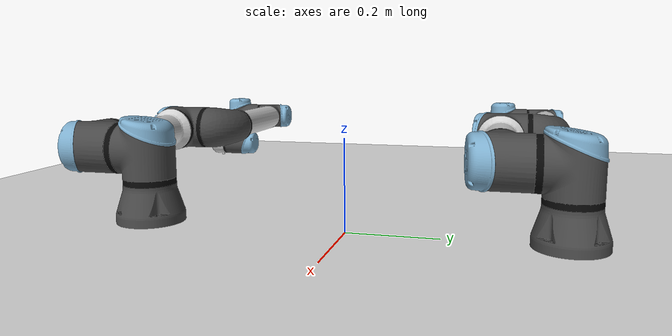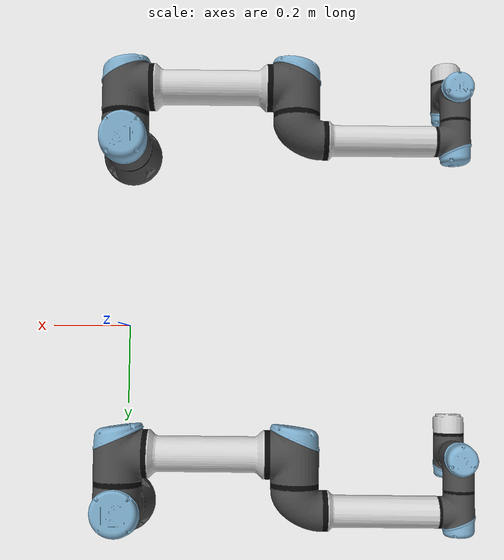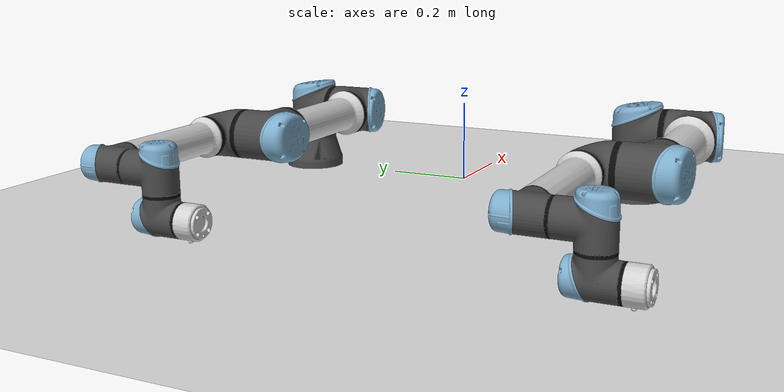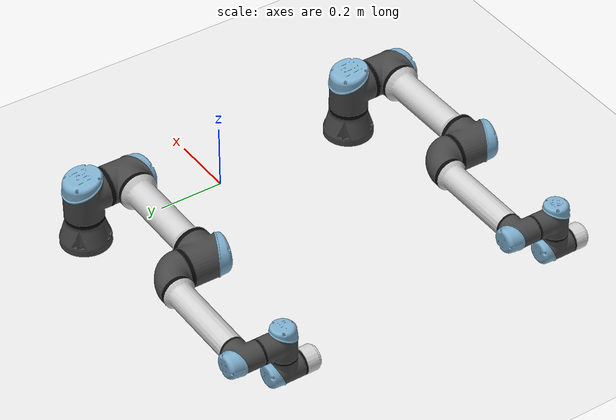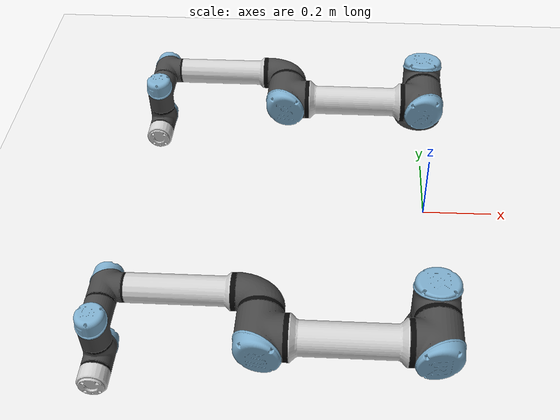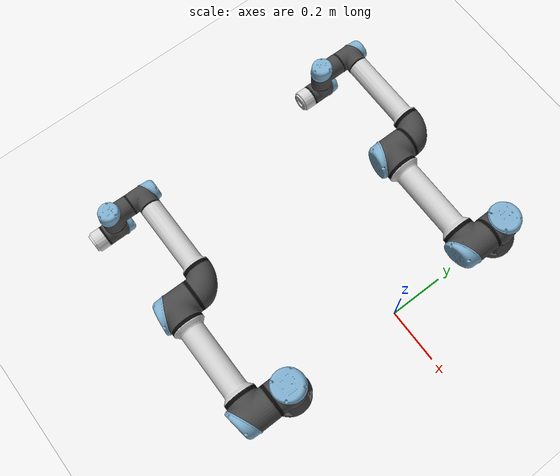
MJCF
<mujoco model="dual_ur5e_official_0330"><compiler angle="radian" meshdir="D:\Michael\2025\01.Research\01.Parceldetection\16.Pybullet\mujoco_menagerie\universal_robots_ur5e\assets" autolimits="true" /><option integrator="implicitfast" timestep="0.002" gravity="0 0 -9.81" /><size memory="128M" nconmax="2000" /><statistic center="0.45 0 0.45" extent="1.2" /><visual><headlight diffuse="0.6 0.6 0.6" ambient="0.1 0.1 0.1" specular="0 0 0" /><rgba haze="0.15 0.25 0.35 1" /><global azimuth="120" elevation="-20" /></visual><asset>
    <material class="ur5e" name="black" rgba="0.033 0.033 0.033 1" />
    <material class="ur5e" name="jointgray" rgba="0.278 0.278 0.278 1" />
    <material class="ur5e" name="linkgray" rgba="0.82 0.82 0.82 1" />
    <material class="ur5e" name="urblue" rgba="0.49 0.678 0.8 1" />

    <mesh file="base_0.obj" />
    <mesh file="base_1.obj" />
    <mesh file="shoulder_0.obj" />
    <mesh file="shoulder_1.obj" />
    <mesh file="shoulder_2.obj" />
    <mesh file="upperarm_0.obj" />
    <mesh file="upperarm_1.obj" />
    <mesh file="upperarm_2.obj" />
    <mesh file="upperarm_3.obj" />
    <mesh file="forearm_0.obj" />
    <mesh file="forearm_1.obj" />
    <mesh file="forearm_2.obj" />
    <mesh file="forearm_3.obj" />
    <mesh file="wrist1_0.obj" />
    <mesh file="wrist1_1.obj" />
    <mesh file="wrist1_2.obj" />
    <mesh file="wrist2_0.obj" />
    <mesh file="wrist2_1.obj" />
    <mesh file="wrist2_2.obj" />
    <mesh file="wrist3.obj" />
  </asset>

  <default>
    <default class="ur5e">
      <material specular="0.5" shininess="0.25" />
      <joint axis="0 1 0" range="-6.28319 6.28319" armature="0.1" />
      <general gaintype="fixed" biastype="affine" ctrlrange="-6.2831 6.2831" gainprm="2000" biasprm="0 -2000 -400" forcerange="-150 150" />
      <default class="size3">
        <default class="size3_limited">
          <joint range="-3.1415 3.1415" />
          <general ctrlrange="-3.1415 3.1415" />
        </default>
      </default>
      <default class="size1">
        <general gainprm="500" biasprm="0 -500 -100" forcerange="-28 28" />
      </default>
      <default class="visual">
        <geom type="mesh" contype="0" conaffinity="0" group="2" />
      </default>
      <default class="collision">
        <geom type="capsule" group="3" />
        <default class="eef_collision">
          <geom type="cylinder" />
        </default>
      </default>
      <site size="0.001" rgba="0.5 0.5 0.5 0.3" group="4" />
    </default>
  </default>

  <worldbody><light name="main_light" pos="0 0 1.8" dir="0 0 -1" directional="true" /><geom name="floor" type="plane" size="0 0 0.05" rgba="0.92 0.92 0.92 1" /><camera name="overview" pos="1.6 0 1.0" xyaxes="0 1 0 -0.40 0 0.92" /><body name="left_base" quat="0 0 0 -1" childclass="ur5e" pos="0.000000 -0.450000 0.000000">
      <inertial mass="4.0" pos="0 0 0" diaginertia="0.00443333156 0.00443333156 0.0072" />
      <geom mesh="base_0" material="black" class="visual" />
      <geom mesh="base_1" material="jointgray" class="visual" />
      <body name="left_shoulder_link" pos="0 0 0.163">
        <inertial mass="3.7" pos="0 0 0" diaginertia="0.0102675 0.0102675 0.00666" />
        <joint name="left_shoulder_pan_joint" class="size3" axis="0 0 1" />
        <geom mesh="shoulder_0" material="urblue" class="visual" />
        <geom mesh="shoulder_1" material="black" class="visual" />
        <geom mesh="shoulder_2" material="jointgray" class="visual" />
        <geom class="collision" size="0.06 0.06" pos="0 0 -0.04" />
        <body name="left_upper_arm_link" pos="0 0.138 0" quat="1 0 1 0">
          <inertial mass="8.393" pos="0 0 0.2125" diaginertia="0.133886 0.133886 0.0151074" />
          <joint name="left_shoulder_lift_joint" class="size3" />
          <geom mesh="upperarm_0" material="linkgray" class="visual" />
          <geom mesh="upperarm_1" material="black" class="visual" />
          <geom mesh="upperarm_2" material="jointgray" class="visual" />
          <geom mesh="upperarm_3" material="urblue" class="visual" />
          <geom class="collision" pos="0 -0.04 0" quat="1 1 0 0" size="0.06 0.06" />
          <geom class="collision" size="0.05 0.2" pos="0 0 0.2" />
          <body name="left_forearm_link" pos="0 -0.131 0.425">
            <inertial mass="2.275" pos="0 0 0.196" diaginertia="0.0311796 0.0311796 0.004095" />
            <joint name="left_elbow_joint" class="size3_limited" />
            <geom mesh="forearm_0" material="urblue" class="visual" />
            <geom mesh="forearm_1" material="linkgray" class="visual" />
            <geom mesh="forearm_2" material="black" class="visual" />
            <geom mesh="forearm_3" material="jointgray" class="visual" />
            <geom class="collision" pos="0 0.08 0" quat="1 1 0 0" size="0.055 0.06" />
            <geom class="collision" size="0.038 0.19" pos="0 0 0.2" />
            <body name="left_wrist_1_link" pos="0 0 0.392" quat="1 0 1 0">
              <inertial mass="1.219" pos="0 0.127 0" diaginertia="0.0025599 0.0025599 0.0021942" />
              <joint name="left_wrist_1_joint" class="size1" />
              <geom mesh="wrist1_0" material="black" class="visual" />
              <geom mesh="wrist1_1" material="urblue" class="visual" />
              <geom mesh="wrist1_2" material="jointgray" class="visual" />
              <geom class="collision" pos="0 0.05 0" quat="1 1 0 0" size="0.04 0.07" />
              <body name="left_wrist_2_link" pos="0 0.127 0">
                <inertial mass="1.219" pos="0 0 0.1" diaginertia="0.0025599 0.0025599 0.0021942" />
                <joint name="left_wrist_2_joint" axis="0 0 1" class="size1" />
                <geom mesh="wrist2_0" material="black" class="visual" />
                <geom mesh="wrist2_1" material="urblue" class="visual" />
                <geom mesh="wrist2_2" material="jointgray" class="visual" />
                <geom class="collision" size="0.04 0.06" pos="0 0 0.04" />
                <geom class="collision" pos="0 0.02 0.1" quat="1 1 0 0" size="0.04 0.04" />
                <body name="left_wrist_3_link" pos="0 0 0.1">
                  <inertial mass="0.1889" pos="0 0.0771683 0" quat="1 0 0 1" diaginertia="0.000132134 9.90863e-05 9.90863e-05" />
                  <joint name="left_wrist_3_joint" class="size1" />
                  <geom material="linkgray" mesh="wrist3" class="visual" />
                  <geom class="eef_collision" pos="0 0.08 0" quat="1 1 0 0" size="0.04 0.02" />
                  <site name="left_attachment_site" pos="0 0.1 0" quat="-1 1 0 0" />
                </body>
              </body>
            </body>
          </body>
        </body>
      </body>
    </body>
  <body name="right_base" quat="0 0 0 -1" childclass="ur5e" pos="0.000000 0.450000 0.000000">
      <inertial mass="4.0" pos="0 0 0" diaginertia="0.00443333156 0.00443333156 0.0072" />
      <geom mesh="base_0" material="black" class="visual" />
      <geom mesh="base_1" material="jointgray" class="visual" />
      <body name="right_shoulder_link" pos="0 0 0.163">
        <inertial mass="3.7" pos="0 0 0" diaginertia="0.0102675 0.0102675 0.00666" />
        <joint name="right_shoulder_pan_joint" class="size3" axis="0 0 1" />
        <geom mesh="shoulder_0" material="urblue" class="visual" />
        <geom mesh="shoulder_1" material="black" class="visual" />
        <geom mesh="shoulder_2" material="jointgray" class="visual" />
        <geom class="collision" size="0.06 0.06" pos="0 0 -0.04" />
        <body name="right_upper_arm_link" pos="0 0.138 0" quat="1 0 1 0">
          <inertial mass="8.393" pos="0 0 0.2125" diaginertia="0.133886 0.133886 0.0151074" />
          <joint name="right_shoulder_lift_joint" class="size3" />
          <geom mesh="upperarm_0" material="linkgray" class="visual" />
          <geom mesh="upperarm_1" material="black" class="visual" />
          <geom mesh="upperarm_2" material="jointgray" class="visual" />
          <geom mesh="upperarm_3" material="urblue" class="visual" />
          <geom class="collision" pos="0 -0.04 0" quat="1 1 0 0" size="0.06 0.06" />
          <geom class="collision" size="0.05 0.2" pos="0 0 0.2" />
          <body name="right_forearm_link" pos="0 -0.131 0.425">
            <inertial mass="2.275" pos="0 0 0.196" diaginertia="0.0311796 0.0311796 0.004095" />
            <joint name="right_elbow_joint" class="size3_limited" />
            <geom mesh="forearm_0" material="urblue" class="visual" />
            <geom mesh="forearm_1" material="linkgray" class="visual" />
            <geom mesh="forearm_2" material="black" class="visual" />
            <geom mesh="forearm_3" material="jointgray" class="visual" />
            <geom class="collision" pos="0 0.08 0" quat="1 1 0 0" size="0.055 0.06" />
            <geom class="collision" size="0.038 0.19" pos="0 0 0.2" />
            <body name="right_wrist_1_link" pos="0 0 0.392" quat="1 0 1 0">
              <inertial mass="1.219" pos="0 0.127 0" diaginertia="0.0025599 0.0025599 0.0021942" />
              <joint name="right_wrist_1_joint" class="size1" />
              <geom mesh="wrist1_0" material="black" class="visual" />
              <geom mesh="wrist1_1" material="urblue" class="visual" />
              <geom mesh="wrist1_2" material="jointgray" class="visual" />
              <geom class="collision" pos="0 0.05 0" quat="1 1 0 0" size="0.04 0.07" />
              <body name="right_wrist_2_link" pos="0 0.127 0">
                <inertial mass="1.219" pos="0 0 0.1" diaginertia="0.0025599 0.0025599 0.0021942" />
                <joint name="right_wrist_2_joint" axis="0 0 1" class="size1" />
                <geom mesh="wrist2_0" material="black" class="visual" />
                <geom mesh="wrist2_1" material="urblue" class="visual" />
                <geom mesh="wrist2_2" material="jointgray" class="visual" />
                <geom class="collision" size="0.04 0.06" pos="0 0 0.04" />
                <geom class="collision" pos="0 0.02 0.1" quat="1 1 0 0" size="0.04 0.04" />
                <body name="right_wrist_3_link" pos="0 0 0.1">
                  <inertial mass="0.1889" pos="0 0.0771683 0" quat="1 0 0 1" diaginertia="0.000132134 9.90863e-05 9.90863e-05" />
                  <joint name="right_wrist_3_joint" class="size1" />
                  <geom material="linkgray" mesh="wrist3" class="visual" />
                  <geom class="eef_collision" pos="0 0.08 0" quat="1 1 0 0" size="0.04 0.02" />
                  <site name="right_attachment_site" pos="0 0.1 0" quat="-1 1 0 0" />
                </body>
              </body>
            </body>
          </body>
        </body>
      </body>
    </body>
  </worldbody><actuator><general class="size3" name="left_shoulder_pan" joint="left_shoulder_pan_joint" />
    <general class="size3" name="left_shoulder_lift" joint="left_shoulder_lift_joint" />
    <general class="size3_limited" name="left_elbow" joint="left_elbow_joint" />
    <general class="size1" name="left_wrist_1" joint="left_wrist_1_joint" />
    <general class="size1" name="left_wrist_2" joint="left_wrist_2_joint" />
    <general class="size1" name="left_wrist_3" joint="left_wrist_3_joint" />
  <general class="size3" name="right_shoulder_pan" joint="right_shoulder_pan_joint" />
    <general class="size3" name="right_shoulder_lift" joint="right_shoulder_lift_joint" />
    <general class="size3_limited" name="right_elbow" joint="right_elbow_joint" />
    <general class="size1" name="right_wrist_1" joint="right_wrist_1_joint" />
    <general class="size1" name="right_wrist_2" joint="right_wrist_2_joint" />
    <general class="size1" name="right_wrist_3" joint="right_wrist_3_joint" />
  </actuator></mujoco>
